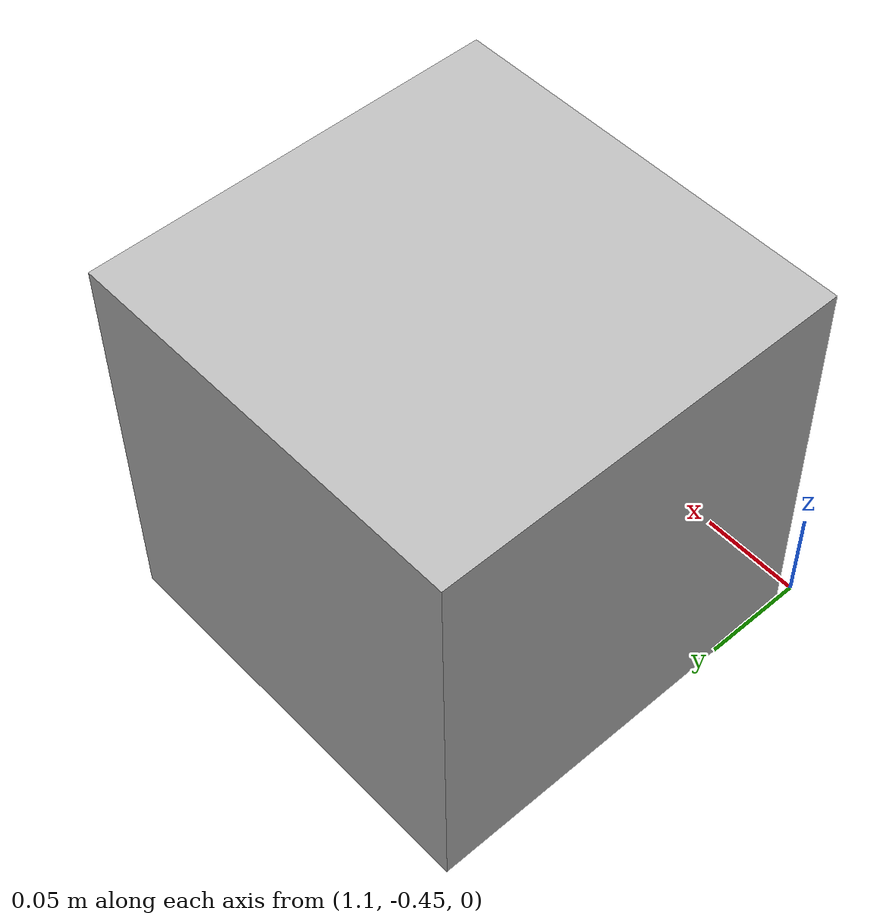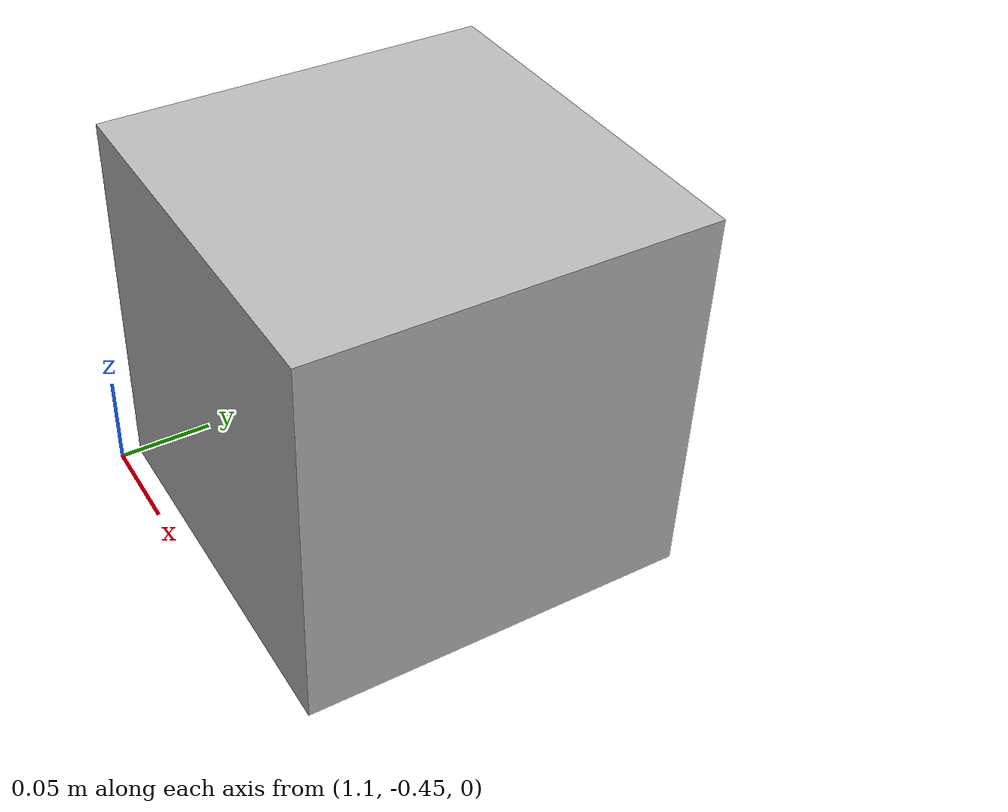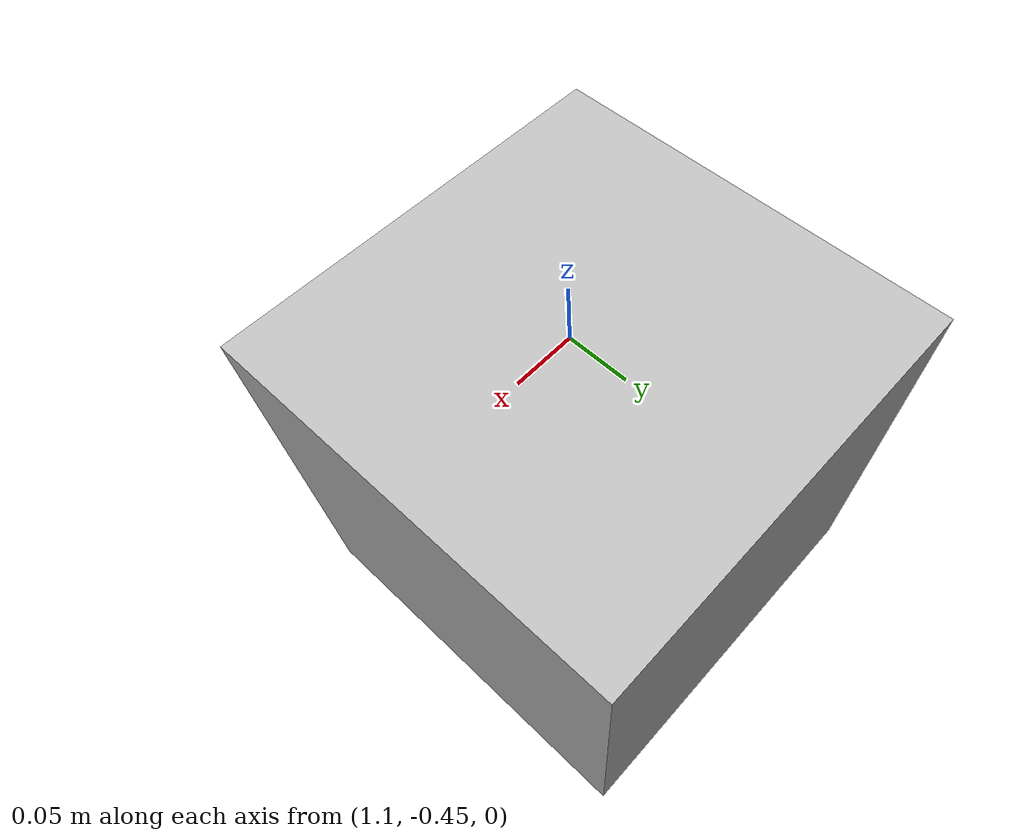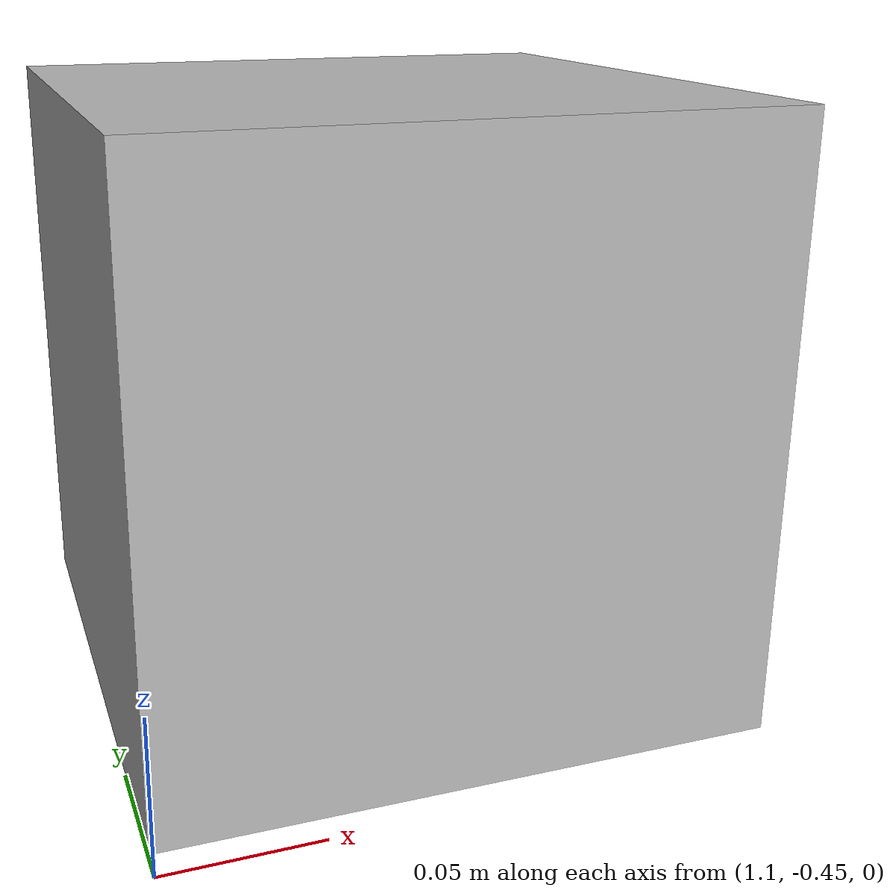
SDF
<?xml version='1.0'?>
  <sdf version='1.6'>
    <model name="Object">
      <static>false</static>

      <link name='cube'>
        <pose>1.2 -0.34 0.1 0 0 0</pose>

        <collision name='collision'>
          <geometry>
            <box>
              <size>.2 .2 .2</size>
            </box>
          </geometry>
        </collision>

        <surface>
          <friction>
            <ode>
              <mu>1</mu>
              <mu2>1</mu2>
              <slip1>1.0</slip1>
              <slip2>1.0</slip2>
            </ode>
          </friction>
        </surface>

        <visual name='visual'>
          <geometry>
            <box>
              <size>.2 .2 .2</size>
            </box>
          </geometry>
        </visual>
      </link>

    </model>
  </sdf>
